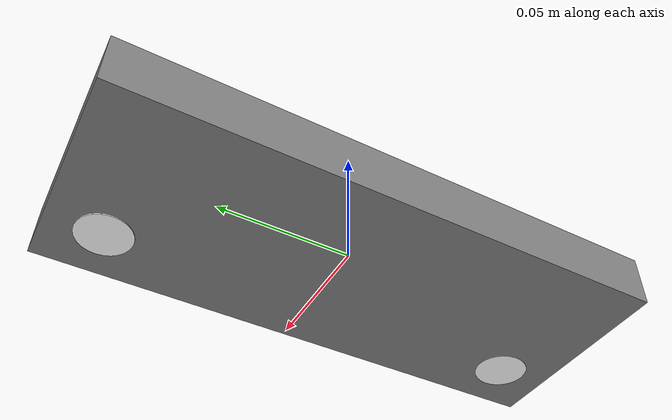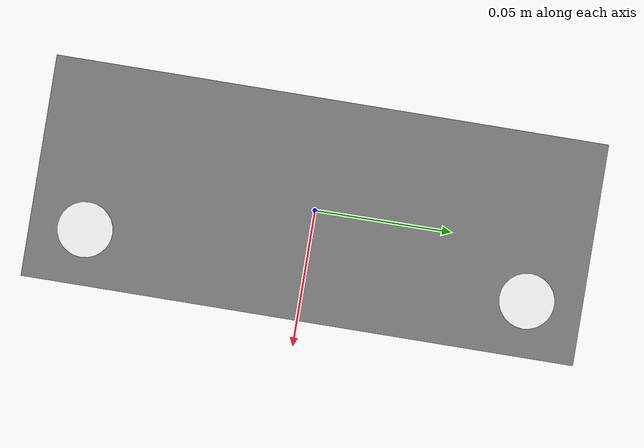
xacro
<?xml version="1.0"?>
<robot name="vtol" xmlns:xacro="http://www.ros.org/wiki/xacro">

  <xacro:property name="INCLINOMETER_X"    value="0.04" />
  <xacro:property name="INCLINOMETER_Y"    value="0.1" />
  <xacro:property name="INCLINOMETER_Z"    value="0.01" />

  <xacro:property name="BIG_HOLE_RADIUS"    value="0.01" />
  <xacro:property name="BIG_HOLE_SHIFT_X"   value="0.02" />
  <xacro:property name="BIG_HOLE_SHIFT_Y"   value="0.08" />

  <material name="grey">
    <color rgba="0.5 0.5 0.5 1.0"/>
  </material>
  <material name="white">
    <color rgba="1.0 1.0 1.0 1.0"/>
  </material>

  <link name="base_footprint"/>

  <link name="base_link">
    <visual>
      <origin xyz="0 0 0" rpy="3.14 0 3.14"/>
      <geometry>
        <box size="${INCLINOMETER_X * 2} ${INCLINOMETER_Y * 2} ${INCLINOMETER_Z * 2}"/>
      </geometry>
      <material name="grey"/>
    </visual>
    <collision>
      <origin xyz="0 0 0" rpy="0 0 0"/>
      <geometry>
        <box size="${INCLINOMETER_X * 2} ${INCLINOMETER_Y * 2} ${INCLINOMETER_Z * 2}"/>
      </geometry>
    </collision>
  </link>
  <joint name="base_joint" type="fixed">
    <parent link="base_footprint"/>
    <child link="base_link"/>
    <origin xyz="0 0 0" rpy="0 0 0"/>
  </joint>

  <link name="big_hole1">
    <visual>
      <origin xyz="0 0 0" rpy="0 0 0"/>
      <geometry>
        <cylinder radius="${BIG_HOLE_RADIUS}" length="${INCLINOMETER_Z * 2.05}" />
      </geometry>
      <material name="white"/>
    </visual>
    <collision>
      <origin xyz="0 0 0"/>
      <geometry>
        <cylinder radius="${BIG_HOLE_RADIUS}" length="${INCLINOMETER_Z * 2}" />
      </geometry>
    </collision>
  </link>
  <joint name="hole1_connect" type="fixed">
    <parent link="base_link"/>
    <child link="big_hole1"/>
    <origin xyz="${BIG_HOLE_SHIFT_X} ${BIG_HOLE_SHIFT_Y} 0.0" rpy="0 0 0"/>
    <axis xyz="0 0 1"/>
  </joint>

  <link name="big_hole2">
    <visual>
      <origin xyz="0 0 0" rpy="0 0 0"/>
      <geometry>
        <cylinder radius="${BIG_HOLE_RADIUS}" length="${INCLINOMETER_Z * 2.05}" />
      </geometry>
      <material name="white"/>
    </visual>
    <collision>
      <origin xyz="0 0 0"/>
      <geometry>
        <cylinder radius="${BIG_HOLE_RADIUS}" length="${INCLINOMETER_Z * 2}" />
      </geometry>
    </collision>
  </link>
  <joint name="hole2_connect" type="fixed">
    <parent link="base_link"/>
    <child link="big_hole2"/>
    <origin xyz="${BIG_HOLE_SHIFT_X} ${-BIG_HOLE_SHIFT_Y} 0.0" rpy="0 0 0"/>
    <axis xyz="0 0 1"/>
  </joint>

</robot>
